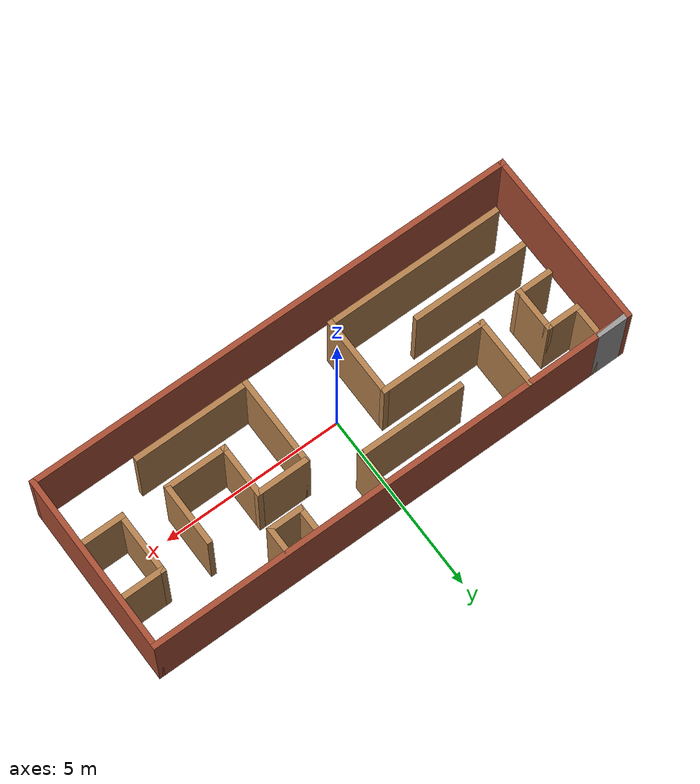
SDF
<?xml version='1.0'?>
<sdf version='1.6'>
  <model name='maze1'>
    <pose frame=''>0.214286 0.154957 0 0 -0 0</pose>
    <link name='Wall_28'>
      <collision name='Wall_28_Collision'>
        <geometry>
          <box>
            <size>13.75 0.15 2.5</size>
          </box>
        </geometry>
        <pose frame=''>0 0 1.25 0 -0 0</pose>
      </collision>
      <visual name='Wall_28_Visual'>
        <pose frame=''>0 0 1.25 0 -0 0</pose>
        <geometry>
          <box>
            <size>13.75 0.15 2.5</size>
          </box>
        </geometry>
        <material>
          <script>
            <uri>file://media/materials/scripts/gazebo.material</uri>
            <name>Gazebo/Bricks</name>
          </script>
          <ambient>1 1 1 1</ambient>
        </material>
        <meta>
          <layer>0</layer>
        </meta>
      </visual>
      <pose frame=''>0 2.425 0 0 -0 0</pose>
    </link>
    <link name='Wall_29'>
      <collision name='Wall_29_Collision'>
        <geometry>
          <box>
            <size>5 0.15 2.5</size>
          </box>
        </geometry>
        <pose frame=''>0 0 1.25 0 -0 0</pose>
      </collision>
      <visual name='Wall_29_Visual'>
        <pose frame=''>0 0 1.25 0 -0 0</pose>
        <geometry>
          <box>
            <size>5 0.15 2.5</size>
          </box>
        </geometry>
        <material>
          <script>
            <uri>file://media/materials/scripts/gazebo.material</uri>
            <name>Gazebo/Bricks</name>
          </script>
          <ambient>1 1 1 1</ambient>
        </material>
        <meta>
          <layer>0</layer>
        </meta>
      </visual>
      <pose frame=''>6.8 0 0 0 -0 -1.5708</pose>
    </link>
    <link name='Wall_30'>
      <collision name='Wall_30_Collision'>
        <geometry>
          <box>
            <size>13.75 0.15 2.5</size>
          </box>
        </geometry>
        <pose frame=''>0 0 1.25 0 -0 0</pose>
      </collision>
      <visual name='Wall_30_Visual'>
        <pose frame=''>0 0 1.25 0 -0 0</pose>
        <geometry>
          <box>
            <size>13.75 0.15 2.5</size>
          </box>
        </geometry>
        <material>
          <script>
            <uri>file://media/materials/scripts/gazebo.material</uri>
            <name>Gazebo/Bricks</name>
          </script>
          <ambient>1 1 1 1</ambient>
        </material>
        <meta>
          <layer>0</layer>
        </meta>
      </visual>
      <pose frame=''>0 -2.425 0 0 -0 3.14159</pose>
    </link>
    <link name='Wall_31'>
      <collision name='Wall_31_Collision'>
        <geometry>
          <box>
            <size>5 0.15 2.5</size>
          </box>
        </geometry>
        <pose frame=''>0 0 1.25 0 -0 0</pose>
      </collision>
      <visual name='Wall_31_Visual'>
        <pose frame=''>0 0 1.25 0 -0 0</pose>
        <geometry>
          <box>
            <size>5 0.15 2.5</size>
          </box>
        </geometry>
        <material>
          <script>
            <uri>file://media/materials/scripts/gazebo.material</uri>
            <name>Gazebo/Bricks</name>
          </script>
          <ambient>1 1 1 1</ambient>
        </material>
        <meta>
          <layer>0</layer>
        </meta>
      </visual>
      <pose frame=''>-6.8 0 0 0 -0 1.5708</pose>
    </link>
    <link name='Wall_37'>
      <collision name='Wall_37_Collision'>
        <geometry>
          <box>
            <size>1 0.15 2.5</size>
          </box>
        </geometry>
        <pose frame=''>0 0 1.25 0 -0 0</pose>
      </collision>
      <visual name='Wall_37_Visual'>
        <pose frame=''>0 0 1.25 0 -0 0</pose>
        <geometry>
          <box>
            <size>1 0.15 2.5</size>
          </box>
        </geometry>
        <material>
          <script>
            <uri>file://media/materials/scripts/gazebo.material</uri>
            <name>Gazebo/Grey</name>
          </script>
          <ambient>1 1 1 1</ambient>
        </material>
        <meta>
          <layer>0</layer>
        </meta>
      </visual>
      <pose frame=''>-6.375 2.425 0 0 -0 0</pose>
    </link>
    <link name='Wall_38'>
      <collision name='Wall_38_Collision'>
        <geometry>
          <box>
            <size>1 0.15 2.5</size>
          </box>
        </geometry>
        <pose frame=''>0 0 1.25 0 -0 0</pose>
      </collision>
      <visual name='Wall_38_Visual'>
        <pose frame=''>0 0 1.25 0 -0 0</pose>
        <geometry>
          <box>
            <size>1 0.15 2.5</size>
          </box>
        </geometry>
        <material>
          <script>
            <uri>file://media/materials/scripts/gazebo.material</uri>
            <name>Gazebo/Wood</name>
          </script>
          <ambient>1 1 1 1</ambient>
        </material>
        <meta>
          <layer>0</layer>
        </meta>
      </visual>
      <pose frame=''>-5.95 2 0 0 -0 -1.5708</pose>
    </link>
    <link name='Wall_39'>
      <collision name='Wall_39_Collision'>
        <geometry>
          <box>
            <size>1 0.15 2.5</size>
          </box>
        </geometry>
        <pose frame=''>0 0 1.25 0 -0 0</pose>
      </collision>
      <visual name='Wall_39_Visual'>
        <pose frame=''>0 0 1.25 0 -0 0</pose>
        <geometry>
          <box>
            <size>1 0.15 2.5</size>
          </box>
        </geometry>
        <material>
          <script>
            <uri>file://media/materials/scripts/gazebo.material</uri>
            <name>Gazebo/Wood</name>
          </script>
          <ambient>1 1 1 1</ambient>
        </material>
        <meta>
          <layer>0</layer>
        </meta>
      </visual>
      <pose frame=''>-5.525 1.575 0 0 -0 0</pose>
    </link>
    <link name='Wall_40'>
      <collision name='Wall_40_Collision'>
        <geometry>
          <box>
            <size>1.25 0.15 2.5</size>
          </box>
        </geometry>
        <pose frame=''>0 0 1.25 0 -0 0</pose>
      </collision>
      <visual name='Wall_40_Visual'>
        <pose frame=''>0 0 1.25 0 -0 0</pose>
        <geometry>
          <box>
            <size>1.25 0.15 2.5</size>
          </box>
        </geometry>
        <material>
          <script>
            <uri>file://media/materials/scripts/gazebo.material</uri>
            <name>Gazebo/Wood</name>
          </script>
          <ambient>1 1 1 1</ambient>
        </material>
        <meta>
          <layer>0</layer>
        </meta>
      </visual>
      <pose frame=''>-5.1 1.025 0 0 -0 -1.5708</pose>
    </link>
    <link name='Wall_41'>
      <collision name='Wall_41_Collision'>
        <geometry>
          <box>
            <size>1 0.15 2.5</size>
          </box>
        </geometry>
        <pose frame=''>0 0 1.25 0 -0 0</pose>
      </collision>
      <visual name='Wall_41_Visual'>
        <pose frame=''>0 0 1.25 0 -0 0</pose>
        <geometry>
          <box>
            <size>1 0.15 2.5</size>
          </box>
        </geometry>
        <material>
          <script>
            <uri>file://media/materials/scripts/gazebo.material</uri>
            <name>Gazebo/Wood</name>
          </script>
          <ambient>1 1 1 1</ambient>
        </material>
        <meta>
          <layer>0</layer>
        </meta>
      </visual>
      <pose frame=''>-5.525 0.475 0 0 -0 3.14159</pose>
    </link>
    <link name='Wall_43'>
      <collision name='Wall_43_Collision'>
        <geometry>
          <box>
            <size>5 0.15 2.5</size>
          </box>
        </geometry>
        <pose frame=''>0 0 1.25 0 -0 0</pose>
      </collision>
      <visual name='Wall_43_Visual'>
        <pose frame=''>0 0 1.25 0 -0 0</pose>
        <geometry>
          <box>
            <size>5 0.15 2.5</size>
          </box>
        </geometry>
        <material>
          <script>
            <uri>file://media/materials/scripts/gazebo.material</uri>
            <name>Gazebo/Wood</name>
          </script>
          <ambient>1 1 1 1</ambient>
        </material>
        <meta>
          <layer>0</layer>
        </meta>
      </visual>
      <pose frame=''>-3.48278 -1.53032 0 0 -0 0</pose>
    </link>
    <link name='Wall_44'>
      <collision name='Wall_44_Collision'>
        <geometry>
          <box>
            <size>2.25 0.15 2.5</size>
          </box>
        </geometry>
        <pose frame=''>0 0 1.25 0 -0 0</pose>
      </collision>
      <visual name='Wall_44_Visual'>
        <pose frame=''>0 0 1.25 0 -0 0</pose>
        <geometry>
          <box>
            <size>2.25 0.15 2.5</size>
          </box>
        </geometry>
        <material>
          <script>
            <uri>file://media/materials/scripts/gazebo.material</uri>
            <name>Gazebo/Wood</name>
          </script>
          <ambient>1 1 1 1</ambient>
        </material>
        <meta>
          <layer>0</layer>
        </meta>
      </visual>
      <pose frame=''>-1.05778 -0.480315 0 0 -0 1.5708</pose>
    </link>
    <link name='Wall_45'>
      <collision name='Wall_45_Collision'>
        <geometry>
          <box>
            <size>3 0.15 2.5</size>
          </box>
        </geometry>
        <pose frame=''>0 0 1.25 0 -0 0</pose>
      </collision>
      <visual name='Wall_45_Visual'>
        <pose frame=''>0 0 1.25 0 -0 0</pose>
        <geometry>
          <box>
            <size>3 0.15 2.5</size>
          </box>
        </geometry>
        <material>
          <script>
            <uri>file://media/materials/scripts/gazebo.material</uri>
            <name>Gazebo/Wood</name>
          </script>
          <ambient>1 1 1 1</ambient>
        </material>
        <meta>
          <layer>0</layer>
        </meta>
      </visual>
      <pose frame=''>-2.48278 0.569685 0 0 -0 3.14159</pose>
    </link>
    <link name='Wall_46'>
      <collision name='Wall_46_Collision'>
        <geometry>
          <box>
            <size>2 0.15 2.5</size>
          </box>
        </geometry>
        <pose frame=''>0 0 1.25 0 -0 0</pose>
      </collision>
      <visual name='Wall_46_Visual'>
        <pose frame=''>0 0 1.25 0 -0 0</pose>
        <geometry>
          <box>
            <size>2 0.15 2.5</size>
          </box>
        </geometry>
        <material>
          <script>
            <uri>file://media/materials/scripts/gazebo.material</uri>
            <name>Gazebo/Wood</name>
          </script>
          <ambient>1 1 1 1</ambient>
        </material>
        <meta>
          <layer>0</layer>
        </meta>
      </visual>
      <pose frame=''>-3.90778 1.49469 0 0 -0 1.5708</pose>
    </link>
    <link name='Wall_48'>
      <collision name='Wall_48_Collision'>
        <geometry>
          <box>
            <size>3.25 0.15 2.5</size>
          </box>
        </geometry>
        <pose frame=''>0 0 1.25 0 -0 0</pose>
      </collision>
      <visual name='Wall_48_Visual'>
        <pose frame=''>0 0 1.25 0 -0 0</pose>
        <geometry>
          <box>
            <size>3.25 0.15 2.5</size>
          </box>
        </geometry>
        <material>
          <script>
            <uri>file://media/materials/scripts/gazebo.material</uri>
            <name>Gazebo/Wood</name>
          </script>
          <ambient>1 1 1 1</ambient>
        </material>
        <meta>
          <layer>0</layer>
        </meta>
      </visual>
      <pose frame=''>-4.32473 -0.445865 0 0 -0 3.14159</pose>
    </link>
    <link name='Wall_50'>
      <collision name='Wall_50_Collision'>
        <geometry>
          <box>
            <size>3 0.15 2.5</size>
          </box>
        </geometry>
        <pose frame=''>0 0 1.25 0 -0 0</pose>
      </collision>
      <visual name='Wall_50_Visual'>
        <pose frame=''>0 0 1.25 0 -0 0</pose>
        <geometry>
          <box>
            <size>3 0.15 2.5</size>
          </box>
        </geometry>
        <material>
          <script>
            <uri>file://media/materials/scripts/gazebo.material</uri>
            <name>Gazebo/Wood</name>
          </script>
          <ambient>1 1 1 1</ambient>
        </material>
        <meta>
          <layer>0</layer>
        </meta>
      </visual>
      <pose frame=''>-1.11168 1.51144 0 0 -0 0</pose>
    </link>
    <link name='Wall_51'>
      <collision name='Wall_51_Collision'>
        <geometry>
          <box>
            <size>1 0.15 2.5</size>
          </box>
        </geometry>
        <pose frame=''>0 0 1.25 0 -0 0</pose>
      </collision>
      <visual name='Wall_51_Visual'>
        <pose frame=''>0 0 1.25 0 -0 0</pose>
        <geometry>
          <box>
            <size>1 0.15 2.5</size>
          </box>
        </geometry>
        <material>
          <script>
            <uri>file://media/materials/scripts/gazebo.material</uri>
            <name>Gazebo/Wood</name>
          </script>
          <ambient>1 1 1 1</ambient>
        </material>
        <meta>
          <layer>0</layer>
        </meta>
      </visual>
      <pose frame=''>0.31332 1.93643 0 0 -0 1.5708</pose>
    </link>
    <link name='Wall_53'>
      <collision name='Wall_53_Collision'>
        <geometry>
          <box>
            <size>1.25 0.15 2.5</size>
          </box>
        </geometry>
        <pose frame=''>0 0 1.25 0 -0 0</pose>
      </collision>
      <visual name='Wall_53_Visual'>
        <pose frame=''>0 0 1.25 0 -0 0</pose>
        <geometry>
          <box>
            <size>1.25 0.15 2.5</size>
          </box>
        </geometry>
        <material>
          <script>
            <uri>file://media/materials/scripts/gazebo.material</uri>
            <name>Gazebo/Wood</name>
          </script>
          <ambient>1 1 1 1</ambient>
        </material>
        <meta>
          <layer>0</layer>
        </meta>
      </visual>
      <pose frame=''>6.18405 1.06178 0 0 -0 3.14159</pose>
    </link>
    <link name='Wall_54'>
      <collision name='Wall_54_Collision'>
        <geometry>
          <box>
            <size>1.75 0.15 2.5</size>
          </box>
        </geometry>
        <pose frame=''>0 0 1.25 0 -0 0</pose>
      </collision>
      <visual name='Wall_54_Visual'>
        <pose frame=''>0 0 1.25 0 -0 0</pose>
        <geometry>
          <box>
            <size>1.75 0.15 2.5</size>
          </box>
        </geometry>
        <material>
          <script>
            <uri>file://media/materials/scripts/gazebo.material</uri>
            <name>Gazebo/Wood</name>
          </script>
          <ambient>1 1 1 1</ambient>
        </material>
        <meta>
          <layer>0</layer>
        </meta>
      </visual>
      <pose frame=''>5.63405 0.261785 0 0 -0 -1.5708</pose>
    </link>
    <link name='Wall_55'>
      <collision name='Wall_55_Collision'>
        <geometry>
          <box>
            <size>1.25 0.15 2.5</size>
          </box>
        </geometry>
        <pose frame=''>0 0 1.25 0 -0 0</pose>
      </collision>
      <visual name='Wall_55_Visual'>
        <pose frame=''>0 0 1.25 0 -0 0</pose>
        <geometry>
          <box>
            <size>1.25 0.15 2.5</size>
          </box>
        </geometry>
        <material>
          <script>
            <uri>file://media/materials/scripts/gazebo.material</uri>
            <name>Gazebo/Wood</name>
          </script>
          <ambient>1 1 1 1</ambient>
        </material>
        <meta>
          <layer>0</layer>
        </meta>
      </visual>
      <pose frame=''>6.18405 -0.538215 0 0 -0 0</pose>
    </link>
    <link name='Wall_57'>
      <collision name='Wall_57_Collision'>
        <geometry>
          <box>
            <size>1.75 0.15 2.5</size>
          </box>
        </geometry>
        <pose frame=''>0 0 1.25 0 -0 0</pose>
      </collision>
      <visual name='Wall_57_Visual'>
        <pose frame=''>0 0 1.25 0 -0 0</pose>
        <geometry>
          <box>
            <size>1.75 0.15 2.5</size>
          </box>
        </geometry>
        <material>
          <script>
            <uri>file://media/materials/scripts/gazebo.material</uri>
            <name>Gazebo/Wood</name>
          </script>
          <ambient>1 1 1 1</ambient>
        </material>
        <meta>
          <layer>0</layer>
        </meta>
      </visual>
      <pose frame=''>4.38 0.314685 0 0 -0 -1.5708</pose>
    </link>
    <link name='Wall_58'>
      <collision name='Wall_58_Collision'>
        <geometry>
          <box>
            <size>1.75 0.15 2.5</size>
          </box>
        </geometry>
        <pose frame=''>0 0 1.25 0 -0 0</pose>
      </collision>
      <visual name='Wall_58_Visual'>
        <pose frame=''>0 0 1.25 0 -0 0</pose>
        <geometry>
          <box>
            <size>1.75 0.15 2.5</size>
          </box>
        </geometry>
        <material>
          <script>
            <uri>file://media/materials/scripts/gazebo.material</uri>
            <name>Gazebo/Wood</name>
          </script>
          <ambient>1 1 1 1</ambient>
        </material>
        <meta>
          <layer>0</layer>
        </meta>
      </visual>
      <pose frame=''>3.57999 -0.485315 0 0 -0 3.14159</pose>
    </link>
    <link name='Wall_59'>
      <collision name='Wall_59_Collision'>
        <geometry>
          <box>
            <size>1.5 0.15 2.5</size>
          </box>
        </geometry>
        <pose frame=''>0 0 1.25 0 -0 0</pose>
      </collision>
      <visual name='Wall_59_Visual'>
        <pose frame=''>0 0 1.25 0 -0 0</pose>
        <geometry>
          <box>
            <size>1.5 0.15 2.5</size>
          </box>
        </geometry>
        <material>
          <script>
            <uri>file://media/materials/scripts/gazebo.material</uri>
            <name>Gazebo/Wood</name>
          </script>
          <ambient>1 1 1 1</ambient>
        </material>
        <meta>
          <layer>0</layer>
        </meta>
      </visual>
      <pose frame=''>2.77999 0.189685 0 0 -0 1.5708</pose>
    </link>
    <link name='Wall_60'>
      <collision name='Wall_60_Collision'>
        <geometry>
          <box>
            <size>1.5 0.15 2.5</size>
          </box>
        </geometry>
        <pose frame=''>0 0 1.25 0 -0 0</pose>
      </collision>
      <visual name='Wall_60_Visual'>
        <pose frame=''>0 0 1.25 0 -0 0</pose>
        <geometry>
          <box>
            <size>1.5 0.15 2.5</size>
          </box>
        </geometry>
        <material>
          <script>
            <uri>file://media/materials/scripts/gazebo.material</uri>
            <name>Gazebo/Wood</name>
          </script>
          <ambient>1 1 1 1</ambient>
        </material>
        <meta>
          <layer>0</layer>
        </meta>
      </visual>
      <pose frame=''>2.105 0.864685 0 0 -0 3.14159</pose>
    </link>
    <link name='Wall_61'>
      <collision name='Wall_61_Collision'>
        <geometry>
          <box>
            <size>2.5 0.15 2.5</size>
          </box>
        </geometry>
        <pose frame=''>0 0 1.25 0 -0 0</pose>
      </collision>
      <visual name='Wall_61_Visual'>
        <pose frame=''>0 0 1.25 0 -0 0</pose>
        <geometry>
          <box>
            <size>2.5 0.15 2.5</size>
          </box>
        </geometry>
        <material>
          <script>
            <uri>file://media/materials/scripts/gazebo.material</uri>
            <name>Gazebo/Wood</name>
          </script>
          <ambient>1 1 1 1</ambient>
        </material>
        <meta>
          <layer>0</layer>
        </meta>
      </visual>
      <pose frame=''>1.42999 -0.310315 0 0 -0 -1.5708</pose>
    </link>
    <link name='Wall_62'>
      <collision name='Wall_62_Collision'>
        <geometry>
          <box>
            <size>3.25 0.15 2.5</size>
          </box>
        </geometry>
        <pose frame=''>0 0 1.25 0 -0 0</pose>
      </collision>
      <visual name='Wall_62_Visual'>
        <pose frame=''>0 0 1.25 0 -0 0</pose>
        <geometry>
          <box>
            <size>3.25 0.15 2.5</size>
          </box>
        </geometry>
        <material>
          <script>
            <uri>file://media/materials/scripts/gazebo.material</uri>
            <name>Gazebo/Wood</name>
          </script>
          <ambient>1 1 1 1</ambient>
        </material>
        <meta>
          <layer>0</layer>
        </meta>
      </visual>
      <pose frame=''>2.98 -1.48531 0 0 -0 0</pose>
    </link>
    <link name='Wall_66'>
      <collision name='Wall_66_Collision'>
        <geometry>
          <box>
            <size>0.75 0.15 2.5</size>
          </box>
        </geometry>
        <pose frame=''>0 0 1.25 0 -0 0</pose>
      </collision>
      <visual name='Wall_66_Visual'>
        <pose frame=''>0 0 1.25 0 -0 0</pose>
        <geometry>
          <box>
            <size>0.75 0.15 2.5</size>
          </box>
        </geometry>
        <material>
          <script>
            <uri>file://media/materials/scripts/gazebo.material</uri>
            <name>Gazebo/Wood</name>
          </script>
          <ambient>1 1 1 1</ambient>
        </material>
        <meta>
          <layer>0</layer>
        </meta>
      </visual>
      <pose frame=''>2.22432 2.04461 0 0 -0 -1.5708</pose>
    </link>
    <link name='Wall_67'>
      <collision name='Wall_67_Collision'>
        <geometry>
          <box>
            <size>1 0.15 2.5</size>
          </box>
        </geometry>
        <pose frame=''>0 0 1.25 0 -0 0</pose>
      </collision>
      <visual name='Wall_67_Visual'>
        <pose frame=''>0 0 1.25 0 -0 0</pose>
        <geometry>
          <box>
            <size>1 0.15 2.5</size>
          </box>
        </geometry>
        <material>
          <script>
            <uri>file://media/materials/scripts/gazebo.material</uri>
            <name>Gazebo/Wood</name>
          </script>
          <ambient>1 1 1 1</ambient>
        </material>
        <meta>
          <layer>0</layer>
        </meta>
      </visual>
      <pose frame=''>2.64932 1.74461 0 0 -0 0</pose>
    </link>
    <link name='Wall_68'>
      <collision name='Wall_68_Collision'>
        <geometry>
          <box>
            <size>0.75 0.15 2.5</size>
          </box>
        </geometry>
        <pose frame=''>0 0 1.25 0 -0 0</pose>
      </collision>
      <visual name='Wall_68_Visual'>
        <pose frame=''>0 0 1.25 0 -0 0</pose>
        <geometry>
          <box>
            <size>0.75 0.15 2.5</size>
          </box>
        </geometry>
        <material>
          <script>
            <uri>file://media/materials/scripts/gazebo.material</uri>
            <name>Gazebo/Wood</name>
          </script>
          <ambient>1 1 1 1</ambient>
        </material>
        <meta>
          <layer>0</layer>
        </meta>
      </visual>
      <pose frame=''>3.07432 2.04461 0 0 -0 1.5708</pose>
    </link>
    <static>1</static>
  </model>
</sdf>
